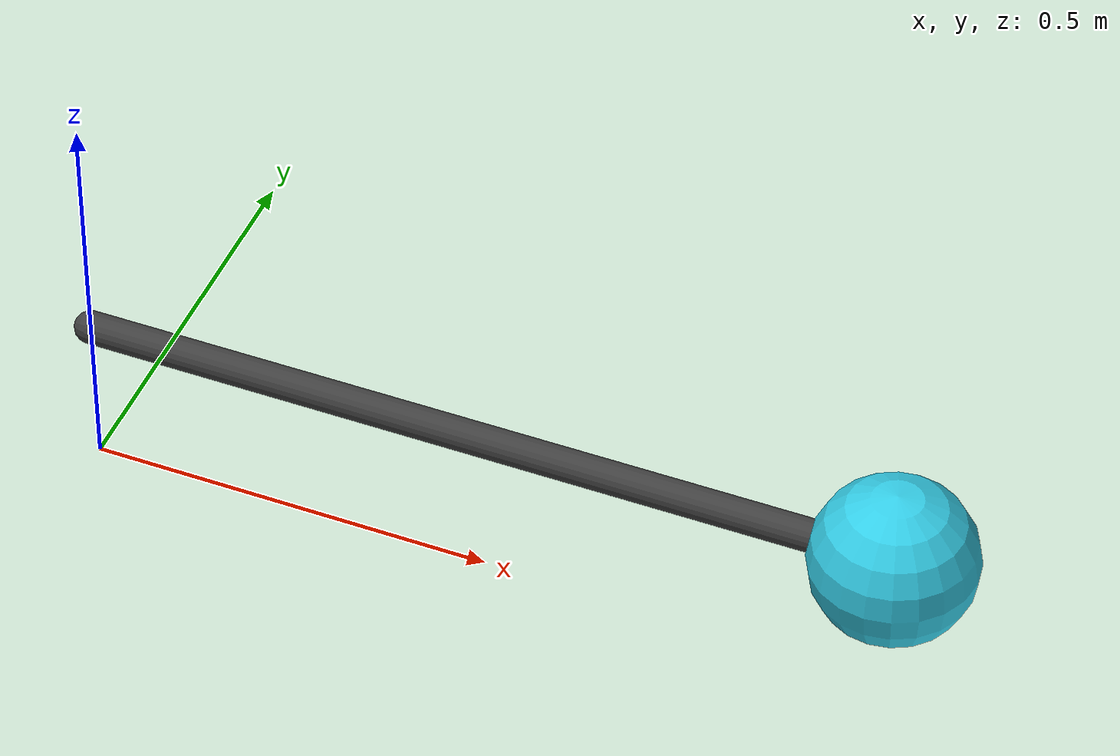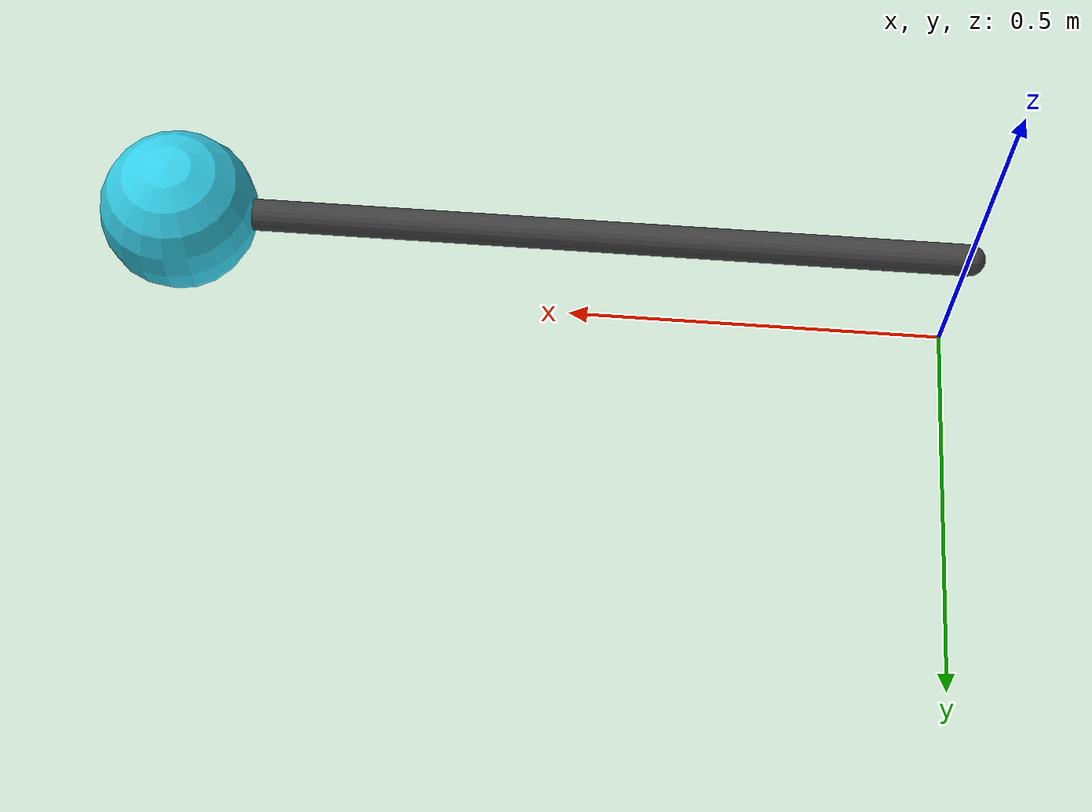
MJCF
<mujoco model="circular_motion">
  <option timestep="0.04" gravity="0 0 0"/>
  <visual><global offwidth="320" offheight="240"/></visual>
  <worldbody>
    <light pos="0 -4 5"/>
    <camera name="track" pos="0 -5 4" xyaxes="1 0 0 0 0.7 0.72"/>
    <body name="arm" pos="0 0 0.2">
      <joint name="hinge" type="hinge" axis="0 0 1" damping="0.0"/>
      <geom type="capsule" fromto="0 0 0 1 0 0" size="0.02" mass="0.1" rgba="0.25 0.25 0.25 1"/>
      <geom name="ball" type="sphere" pos="1 0 0" size="0.1" mass="1" rgba="0.2 0.8 0.9 1"/>
    </body>
  </worldbody>
  <actuator><motor name="torque" joint="hinge" gear="1"/></actuator>
</mujoco>
